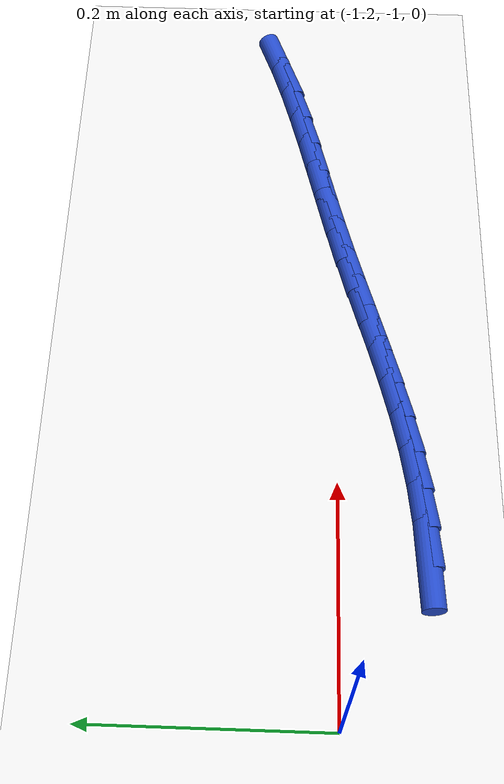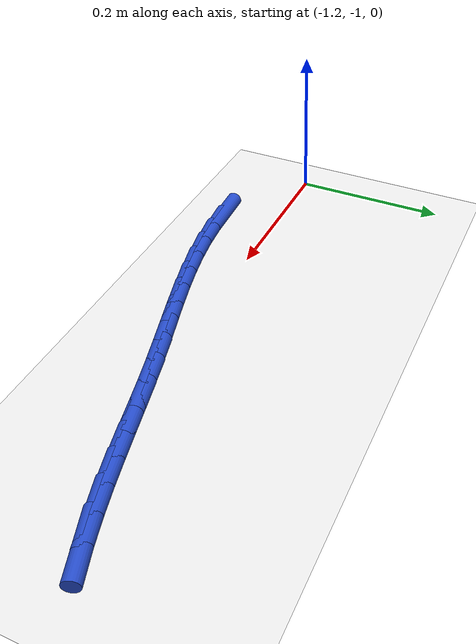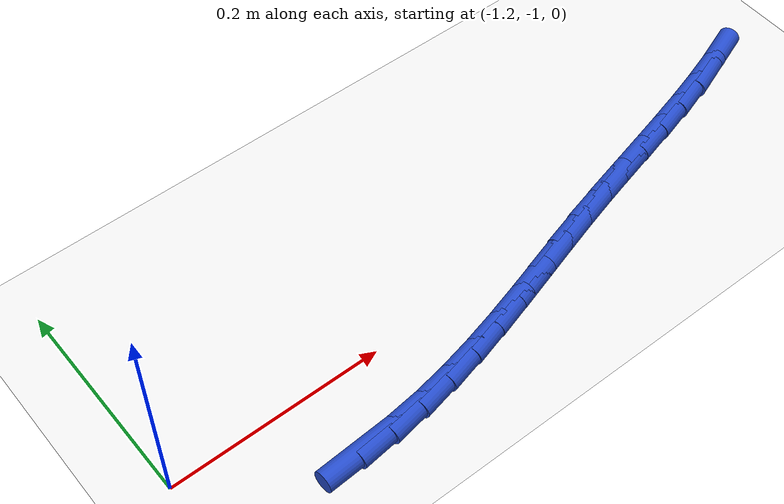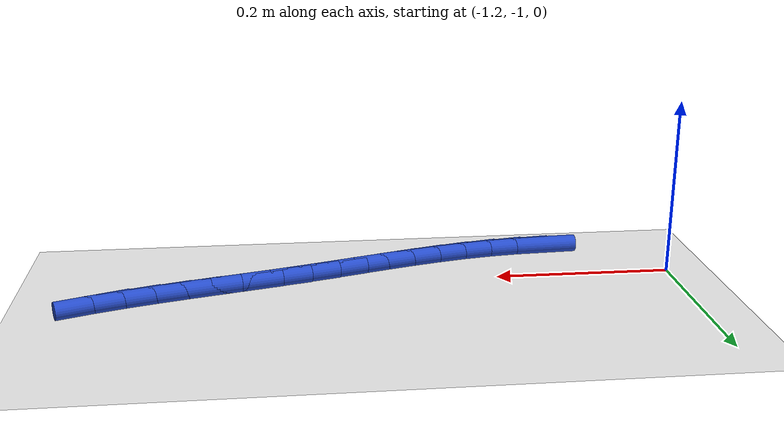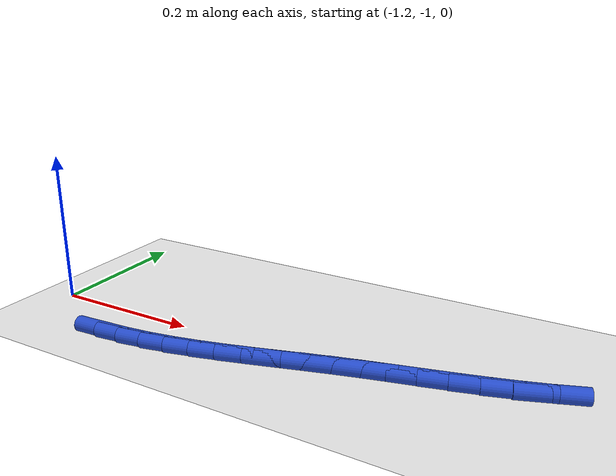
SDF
<sdf version="1.6">
 <world name="default">
  <model name="ground_plane">
   <static>1</static>
   <link name="link">
    <collision name="collision">
     <geometry><plane><normal>0 0 1</normal><size>100 100</size></plane></geometry>
     <surface><friction><ode><mu>100</mu><mu2>50</mu2></ode></friction></surface>
    </collision>
    <visual name="visual">
     <cast_shadows>0</cast_shadows>
     <geometry><plane><normal>0 0 1</normal><size>100 100</size></plane></geometry>
     <material>
      <script><uri>file://media/materials/scripts/gazebo.material</uri><name>Gazebo/WhiteGlow</name></script>
     </material>
    </visual>
   </link>
  </model>
  <model name="line">
   <link name="link_149">
    <pose>-1.0688744424257695 -1.07098584016905 0.01 0 1.57 0.05586404322341378</pose>
    <collision name="collision">
     <geometry><cylinder><radius>0.01</radius><length>0.08</length></cylinder></geometry>
    </collision>
    <visual name="visual">
     <material>
      <script><name>Gazebo/Blue</name><uri>file://media/materials/scripts/gazebo.material</uri></script>
     </material>
     <geometry><cylinder><radius>0.01</radius><length>0.08</length></cylinder></geometry>
    </visual>
   </link>
   <link name="link_150">
    <pose>-1.0361025480195138 -1.0691531627787614 0.01 0 1.57 0.1122565833840028</pose>
    <collision name="collision">
     <geometry><cylinder><radius>0.01</radius><length>0.08</length></cylinder></geometry>
    </collision>
    <visual name="visual">
     <material>
      <script><name>Gazebo/Blue</name><uri>file://media/materials/scripts/gazebo.material</uri></script>
     </material>
     <geometry><cylinder><radius>0.01</radius><length>0.08</length></cylinder></geometry>
    </visual>
   </link>
   <link name="link_151">
    <pose>-1.003651159768651 -1.0654949013059172 0.01 0 1.57 0.16712576132794046</pose>
    <collision name="collision">
     <geometry><cylinder><radius>0.01</radius><length>0.08</length></cylinder></geometry>
    </collision>
    <visual name="visual">
     <material>
      <script><name>Gazebo/Blue</name><uri>file://media/materials/scripts/gazebo.material</uri></script>
     </material>
     <geometry><cylinder><radius>0.01</radius><length>0.08</length></cylinder></geometry>
    </visual>
   </link>
   <link name="link_152">
    <pose>-0.9715572150509677 -1.0600806739491853 0.01 0 1.57 0.21272594309764153</pose>
    <collision name="collision">
     <geometry><cylinder><radius>0.01</radius><length>0.08</length></cylinder></geometry>
    </collision>
    <visual name="visual">
     <material>
      <script><name>Gazebo/Blue</name><uri>file://media/materials/scripts/gazebo.material</uri></script>
     </material>
     <geometry><cylinder><radius>0.01</radius><length>0.08</length></cylinder></geometry>
    </visual>
   </link>
   <link name="link_153">
    <pose>-0.9397365920327934 -1.0532076137995177 0.01 0 1.57 0.2479689512651473</pose>
    <collision name="collision">
     <geometry><cylinder><radius>0.01</radius><length>0.08</length></cylinder></geometry>
    </collision>
    <visual name="visual">
     <material>
      <script><name>Gazebo/Blue</name><uri>file://media/materials/scripts/gazebo.material</uri></script>
     </material>
     <geometry><cylinder><radius>0.01</radius><length>0.08</length></cylinder></geometry>
    </visual>
   </link>
   <link name="link_154">
    <pose>-0.9080928222356154 -1.045196057845674 0.01 0 1.57 0.2727726848858219</pose>
    <collision name="collision">
     <geometry><cylinder><radius>0.01</radius><length>0.08</length></cylinder></geometry>
    </collision>
    <visual name="visual">
     <material>
      <script><name>Gazebo/Blue</name><uri>file://media/materials/scripts/gazebo.material</uri></script>
     </material>
     <geometry><cylinder><radius>0.01</radius><length>0.08</length></cylinder></geometry>
    </visual>
   </link>
   <link name="link_155">
    <pose>-0.8765294371809222 -1.036366343076414 0.01 0 1.57 0.28720104056331913</pose>
    <collision name="collision">
     <geometry><cylinder><radius>0.01</radius><length>0.08</length></cylinder></geometry>
    </collision>
    <visual name="visual">
     <material>
      <script><name>Gazebo/Blue</name><uri>file://media/materials/scripts/gazebo.material</uri></script>
     </material>
     <geometry><cylinder><radius>0.01</radius><length>0.08</length></cylinder></geometry>
    </visual>
   </link>
   <link name="link_156">
    <pose>-0.8449499683902011 -1.0270388064804976 0.01 0 1.57 0.29138196518416876</pose>
    <collision name="collision">
     <geometry><cylinder><radius>0.01</radius><length>0.08</length></cylinder></geometry>
    </collision>
    <visual name="visual">
     <material>
      <script><name>Gazebo/Blue</name><uri>file://media/materials/scripts/gazebo.material</uri></script>
     </material>
     <geometry><cylinder><radius>0.01</radius><length>0.08</length></cylinder></geometry>
    </visual>
   </link>
   <link name="link_157">
    <pose>-0.8132579473849398 -1.017533785046684 0.01 0 1.57 0.2854601774886954</pose>
    <collision name="collision">
     <geometry><cylinder><radius>0.01</radius><length>0.08</length></cylinder></geometry>
    </collision>
    <visual name="visual">
     <material>
      <script><name>Gazebo/Blue</name><uri>file://media/materials/scripts/gazebo.material</uri></script>
     </material>
     <geometry><cylinder><radius>0.01</radius><length>0.08</length></cylinder></geometry>
    </visual>
   </link>
   <link name="link_158">
    <pose>-0.7813569056866262 -1.0081716157637324 0.01 0 1.57 0.2699568539958556</pose>
    <collision name="collision">
     <geometry><cylinder><radius>0.01</radius><length>0.08</length></cylinder></geometry>
    </collision>
    <visual name="visual">
     <material>
      <script><name>Gazebo/Blue</name><uri>file://media/materials/scripts/gazebo.material</uri></script>
     </material>
     <geometry><cylinder><radius>0.01</radius><length>0.08</length></cylinder></geometry>
    </visual>
   </link>
   <link name="link_159">
    <pose>-0.7491555343313767 -0.9992611200156349 0.01 0 1.57 0.2540954789529564</pose>
    <collision name="collision">
     <geometry><cylinder><radius>0.01</radius><length>0.08</length></cylinder></geometry>
    </collision>
    <visual name="visual">
     <material>
      <script><name>Gazebo/Blue</name><uri>file://media/materials/scripts/gazebo.material</uri></script>
     </material>
     <geometry><cylinder><radius>0.01</radius><length>0.08</length></cylinder></geometry>
    </visual>
   </link>
   <link name="link_160">
    <pose>-0.7166888265222106 -0.9908292233221117 0.01 0 1.57 0.24718778262752938</pose>
    <collision name="collision">
     <geometry><cylinder><radius>0.01</radius><length>0.08</length></cylinder></geometry>
    </collision>
    <visual name="visual">
     <material>
      <script><name>Gazebo/Blue</name><uri>file://media/materials/scripts/gazebo.material</uri></script>
     </material>
     <geometry><cylinder><radius>0.01</radius><length>0.08</length></cylinder></geometry>
    </visual>
   </link>
   <link name="link_161">
    <pose>-0.6841224698050173 -0.9826111523695082 0.01 0 1.57 0.2495765168298522</pose>
    <collision name="collision">
     <geometry><cylinder><radius>0.01</radius><length>0.08</length></cylinder></geometry>
    </collision>
    <visual name="visual">
     <material>
      <script><name>Gazebo/Blue</name><uri>file://media/materials/scripts/gazebo.material</uri></script>
     </material>
     <geometry><cylinder><radius>0.01</radius><length>0.08</length></cylinder></geometry>
    </visual>
   </link>
   <link name="link_162">
    <pose>-0.6516281899973092 -0.9743286569273465 0.01 0 1.57 0.26132721251729274</pose>
    <collision name="collision">
     <geometry><cylinder><radius>0.01</radius><length>0.08</length></cylinder></geometry>
    </collision>
    <visual name="visual">
     <material>
      <script><name>Gazebo/Blue</name><uri>file://media/materials/scripts/gazebo.material</uri></script>
     </material>
     <geometry><cylinder><radius>0.01</radius><length>0.08</length></cylinder></geometry>
    </visual>
   </link>
   <link name="link_163">
    <pose>-0.6193777129165983 -0.9657034867651483 0.01 0 1.57 0.2826618694435036</pose>
    <collision name="collision">
     <geometry><cylinder><radius>0.01</radius><length>0.08</length></cylinder></geometry>
    </collision>
    <visual name="visual">
     <material>
      <script><name>Gazebo/Blue</name><uri>file://media/materials/scripts/gazebo.material</uri></script>
     </material>
     <geometry><cylinder><radius>0.01</radius><length>0.08</length></cylinder></geometry>
    </visual>
   </link>
   <link name="link_164">
    <pose>-0.5875427643803972 -0.9564573916524365 0.01 0 1.57 0.31393575376254446</pose>
    <collision name="collision">
     <geometry><cylinder><radius>0.01</radius><length>0.08</length></cylinder></geometry>
    </collision>
    <visual name="visual">
     <material>
      <script><name>Gazebo/Blue</name><uri>file://media/materials/scripts/gazebo.material</uri></script>
     </material>
     <geometry><cylinder><radius>0.01</radius><length>0.08</length></cylinder></geometry>
    </visual>
   </link>
   <link name="link_165">
    <pose>-0.5562950702062184 -0.9463121213587331 0.01 0 1.57 0.35558735243250156</pose>
    <collision name="collision">
     <geometry><cylinder><radius>0.01</radius><length>0.08</length></cylinder></geometry>
    </collision>
    <visual name="visual">
     <material>
      <script><name>Gazebo/Blue</name><uri>file://media/materials/scripts/gazebo.material</uri></script>
     </material>
     <geometry><cylinder><radius>0.01</radius><length>0.08</length></cylinder></geometry>
    </visual>
   </link>
  </model>
 </world>
</sdf>
